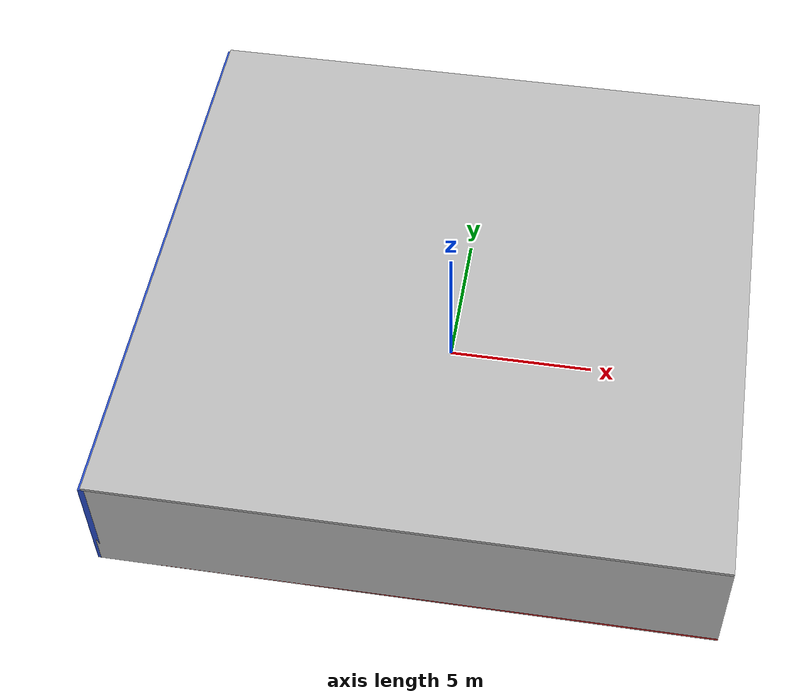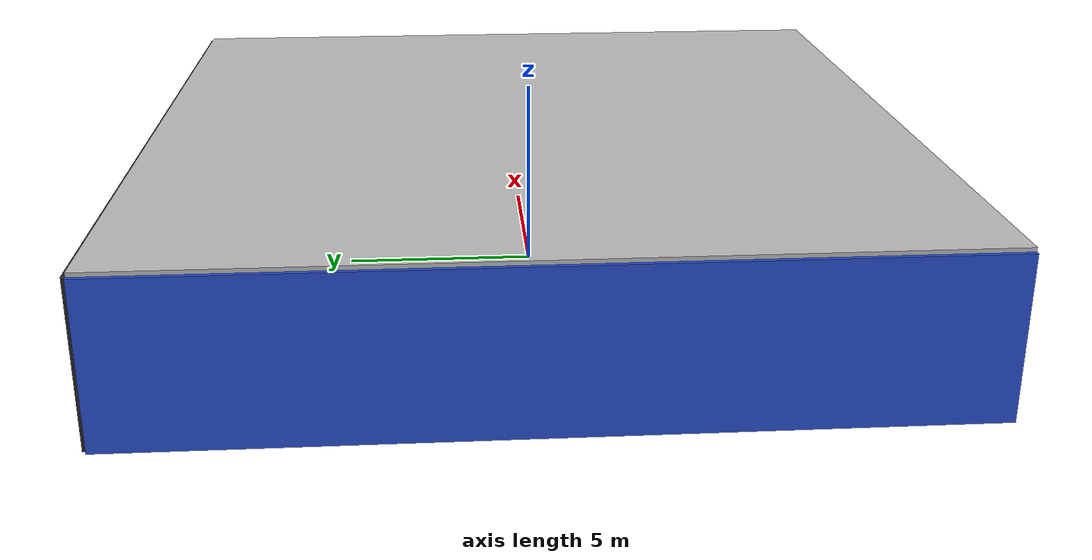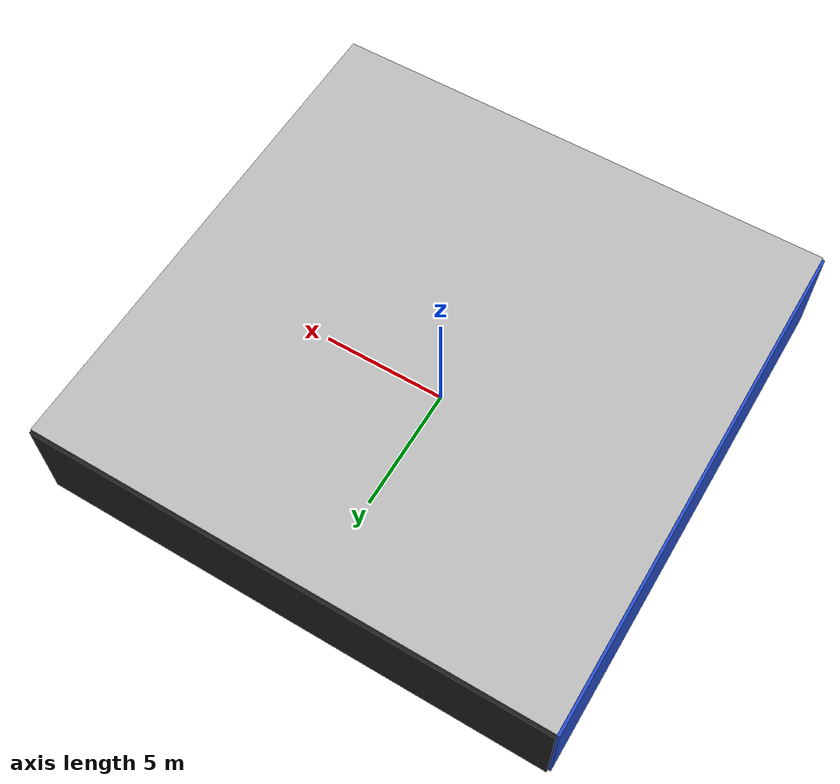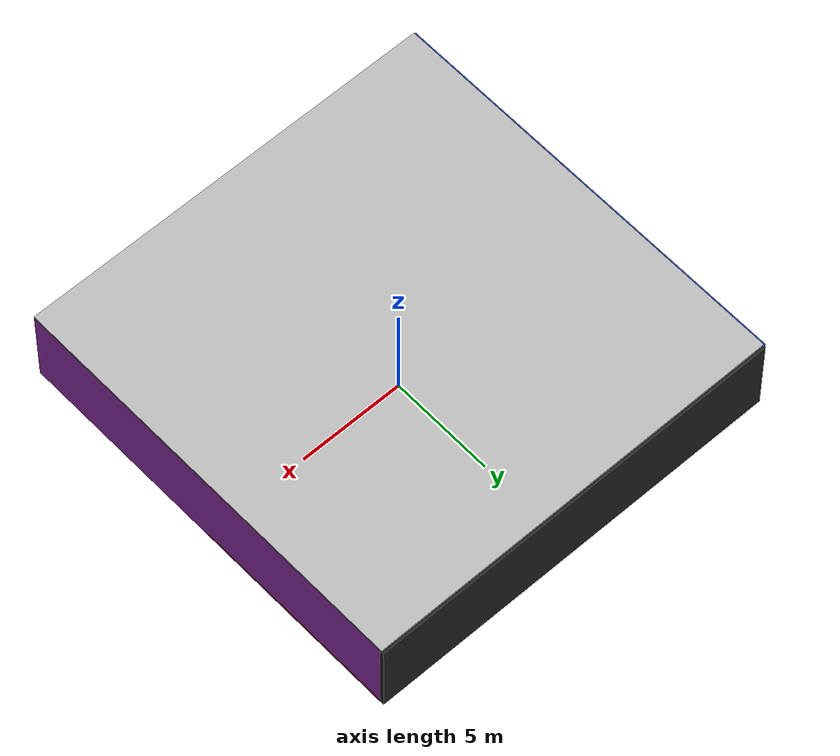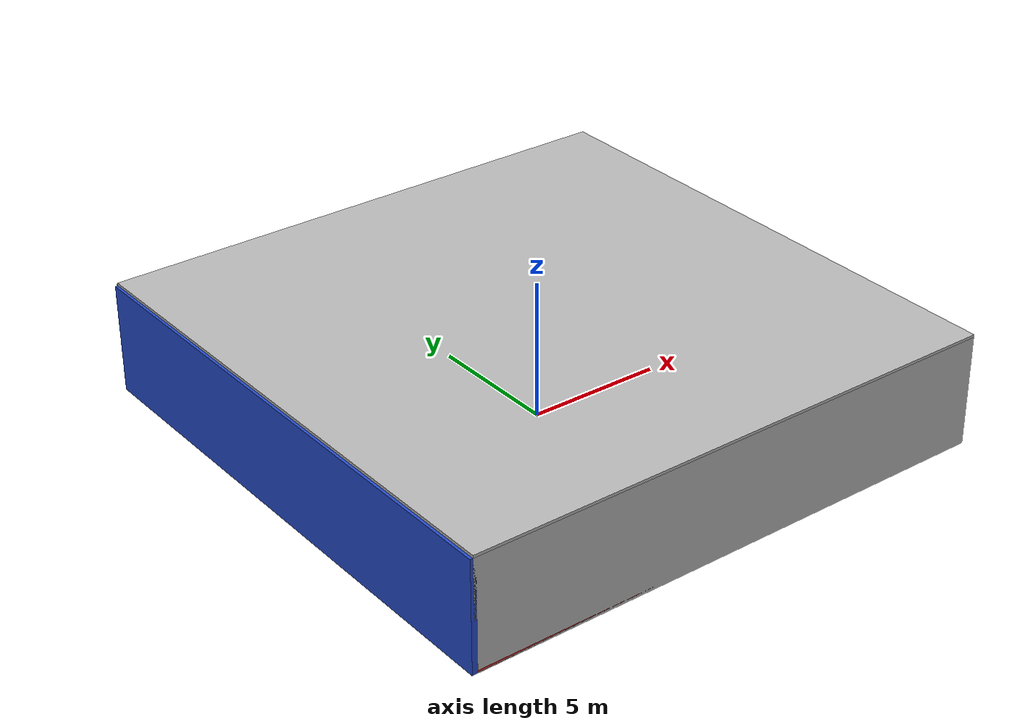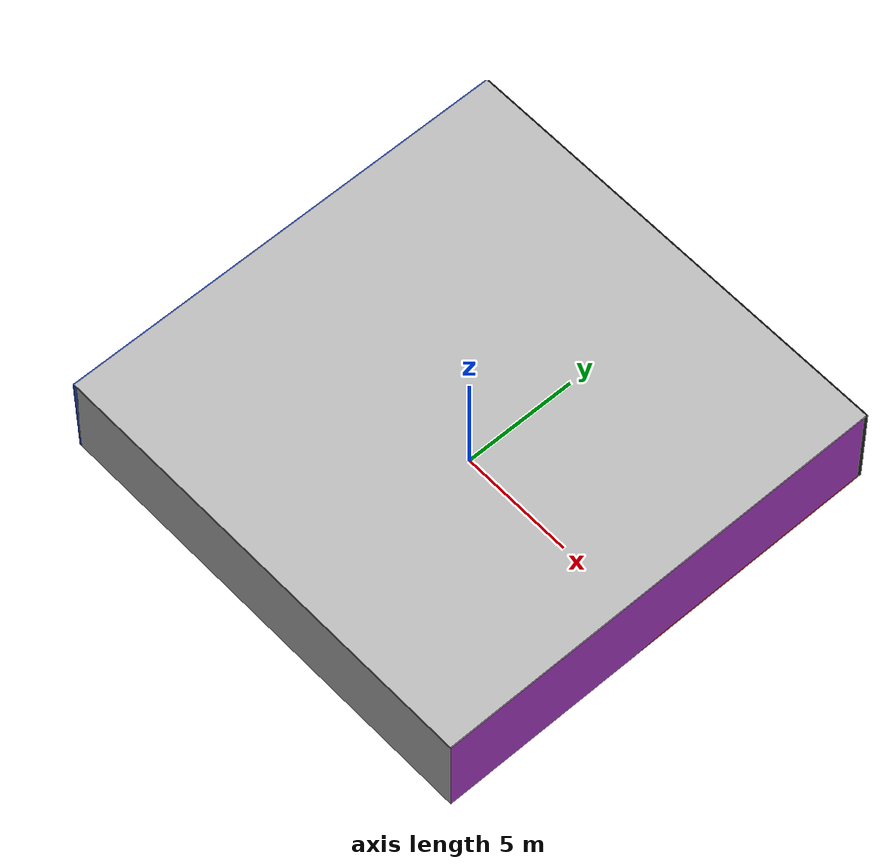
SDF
<sdf version="1.4">
 <world name="default">
  <physics type="ode">
   <max_step_size>0.001</max_step_size>
   <real_time_factor>1</real_time_factor>
   <real_time_update_rate>1000</real_time_update_rate>
   <gravity>0 0 -9.8</gravity>
  </physics>
  <scene><ambient>0.4 0.4 0.4 1</ambient><background>0.7 0.7 0.7 1</background><shadows>1</shadows></scene>
  <model name="Surrounding">
   <static>1</static>
   <link name="Ceiling">
    <collision name="Ceiling_Collision"><geometry><box><size>20 20 0.1</size></box></geometry></collision>
    <visual name="Ceiling_Visual">
     <geometry><box><size>20 20 0.1</size></box></geometry>
     <material>
      <script><uri>file://media/materials/scripts/gazebo.material</uri><name>Gazebo/LightOn</name></script>
     </material>
    </visual>
    <pose>0 0 4.05 0 0 0</pose>
   </link>
   <link name="Wall_South">
    <collision name="Wall_South_Collision">
     <geometry><box><size>20 0 4</size></box></geometry>
     <pose>0 0 2 0 -0 0</pose>
    </collision>
    <visual name="Wall_South_Visual">
     <pose>0 0 2 0 -0 0</pose>
     <geometry><box><size>20 0 4</size></box></geometry>
     <material>
      <script><uri>file://media/materials/scripts/gazebo.material</uri><name>Gazebo/Pioneer2Body</name></script>
     </material>
    </visual>
    <velocity_decay><linear>0</linear><angular>0</angular></velocity_decay>
    <pose>0 -10 0 0 -0 0</pose>
   </link>
   <link name="Wall_East">
    <collision name="Wall_21_Collision">
     <geometry><box><size>20 0 4</size></box></geometry>
     <pose>0 0 2 0 -0 0</pose>
    </collision>
    <visual name="Wall_21_Visual">
     <pose>0 0 2 0 -0 0</pose>
     <geometry><box><size>20 0 4</size></box></geometry>
     <material>
      <script><uri>file://media/materials/scripts/gazebo.material</uri><name>Gazebo/PurpleGlow</name></script>
     </material>
    </visual>
    <velocity_decay><linear>0</linear><angular>0</angular></velocity_decay>
    <pose>10 0 0 0 -0 1.5708</pose>
   </link>
   <link name="Wall_North">
    <collision name="Wall_22_Collision">
     <geometry><box><size>20 0.2 4</size></box></geometry>
     <pose>0 0 2 0 -0 0</pose>
    </collision>
    <visual name="Wall_22_Visual">
     <pose>0 0 2 0 -0 0</pose>
     <geometry><box><size>20 0.2 4</size></box></geometry>
     <material>
      <script><uri>file://media/materials/scripts/gazebo.material</uri><name>Gazebo/Black</name></script>
     </material>
    </visual>
    <velocity_decay><linear>0</linear><angular>0</angular></velocity_decay>
    <pose>0 10 0 0 -0 0</pose>
   </link>
   <link name="Wall_West">
    <collision name="Wall_23_Collision">
     <geometry><box><size>20 0.2 4</size></box></geometry>
     <pose>0 0 2 0 -0 0</pose>
    </collision>
    <visual name="Wall_23_Visual">
     <pose>0 0 2 0 -0 0</pose>
     <geometry><box><size>20 0.2 4</size></box></geometry>
     <material>
      <script><uri>file://media/materials/scripts/gazebo.material</uri><name>Gazebo/Blue</name></script>
     </material>
    </visual>
    <velocity_decay><linear>0</linear><angular>0</angular></velocity_decay>
    <pose>-10 0 0 0 0 -1.5708</pose>
   </link>
   <link name="Ground_link">
    <collision name="collision">
     <pose>0 0 .05 0 -0 0</pose>
     <geometry><box><size>20 20 0.1</size></box></geometry>
    </collision>
    <visual name="visual">
     <pose>0 0 .05 0 -0 0</pose>
     <geometry><box><size>20 20 0.1</size></box></geometry>
     <material>
      <script><uri>file://media/materials/scripts/gazebo.material</uri><name>Gazebo/RedGlow</name></script>
     </material>
    </visual>
   </link>
   <static>1</static>
  </model>
  <spherical_coordinates>
   <surface_model>EARTH_WGS84</surface_model>
   <latitude_deg>0</latitude_deg>
   <longitude_deg>0</longitude_deg>
   <elevation>0</elevation>
   <heading_deg>0</heading_deg>
  </spherical_coordinates>
  <light name="lightball_0" type="diffuse">
   <diffuse>0.8 0.8 0.8 1</diffuse>
   <specular>0.2 0.2 0.2 1</specular>
   <attenuation>
    <range>100</range>
    <constant>0.7</constant>
    <linear>0.01</linear>
    <quadratic>0.001</quadratic>
   </attenuation>
   <direction>-0.5 0.1 -0.9</direction>
   <pose>8.29463749099 6.13521886899 1.12566872557 0 0 0</pose>
  </light>
  <light name="lightball_1" type="diffuse">
   <diffuse>0.8 0.8 0.8 1</diffuse>
   <specular>0.2 0.2 0.2 1</specular>
   <attenuation>
    <range>100</range>
    <constant>0.7</constant>
    <linear>0.01</linear>
    <quadratic>0.001</quadratic>
   </attenuation>
   <direction>-0.5 0.1 -0.9</direction>
   <pose>4.26674885837 -6.95387555266 3.50350697769 0 0 0</pose>
  </light>
  <include>
   <uri>model://construction_cone</uri>
   <pose>-7.85770714143 -5.15925026532 0 0 0 2.83377660096</pose>
  </include>
  <include>
   <uri>model://textured_shapes</uri>
   <pose>-4.42546886705 -3.69070290399 0 0 0 1.68502442277</pose>
  </include>
  <include>
   <uri>model://robocup_3Dsim_goal</uri>
   <pose>-3.53573764331 1.25334532837 0 0 0 1.39272621776</pose>
  </include>
  <include><uri>model://cabinet</uri><pose>-1.18752584589 3.88490880132 0 0 0 2.01305832041</pose></include>
  <include><uri>model://table</uri><pose>1.89655676159 -6.7700567437 0 0 0 1.76685961067</pose></include>
  <include>
   <uri>model://textured_shapes</uri>
   <pose>6.6204807351 -6.67081101569 0 0 0 1.35088742888</pose>
  </include>
  <include><uri>model://cabinet</uri><pose>7.18020819379 -0.739092919241 0 0 0 1.0293071435</pose></include>
  <include><uri>model://cabinet</uri><pose>6.65480021325 1.46061448769 0 0 0 0.113662099399</pose></include>
 </world>
</sdf>

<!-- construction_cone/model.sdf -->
<sdf version="1.5">
  <model name="Construction Cone">
    <link name="link">
      <collision name="collision">
        <geometry>
          <mesh>
            <scale>10 10 10</scale>
            <uri>file://isr-testbed/construction_cone/meshes/construction_cone.dae</uri>
          </mesh>
        </geometry>
      </collision>
      <visual name="visual">
        <geometry>
          <mesh>
            <scale>10 10 10</scale>
            <uri>file://isr-testbed/construction_cone/meshes/construction_cone.dae</uri>
          </mesh>
        </geometry>
      </visual>
    </link>
  </model>
</sdf>

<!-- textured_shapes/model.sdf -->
<sdf version="1.6">
  <model name="textured_shapes">
    <pose>0 0 0.5 0 0 0</pose>
    <link name="box">
      <pose>0 -1.5 0 0 0 0</pose>
      <collision name="collision">
        <geometry>
          <box>
            <size>1 1 1</size>
          </box>
        </geometry>
      </collision>
      <visual name="visual">
        <geometry>
          <box>
            <size>1 1 1</size>
          </box>
        </geometry>
        <material>
          <script>
            <uri>model://../model_source/models/textured_shapes/materials/scripts</uri>
            <uri>model://../model_source/models/textured_shapes/materials/textures</uri>
            <name>TexturedShape/Squares</name>
          </script>
        </material>
      </visual>
    </link>
    <link name="sphere">
      <collision name="collision">
        <geometry>
          <sphere>
            <radius>0.5</radius>
          </sphere>
        </geometry>
      </collision>
      <visual name="visual">
        <geometry>
          <sphere>
            <radius>0.5</radius>
          </sphere>
        </geometry>
        <material>
          <script>
            <uri>model://../model_source/models/textured_shapes/materials/scripts</uri>
            <uri>model://../model_source/models/textured_shapes/materials/textures</uri>
            <name>TexturedShape/Squares</name>
          </script>
        </material>
      </visual>
    </link>
    <link name="cylinder">
      <pose>0 1.5 0 0 0 0</pose>
      <collision name="collision">
        <geometry>
          <cylinder>
            <radius>0.5</radius>
            <length>1</length>
          </cylinder>
        </geometry>
      </collision>
      <visual name="visual">
        <geometry>
          <cylinder>
            <radius>0.5</radius>
            <length>1</length>
          </cylinder>
        </geometry>
        <material>
          <script>
            <uri>model://../model_source/models/textured_shapes/materials/scripts</uri>
            <uri>model://../model_source/models/textured_shapes/materials/textures</uri>
            <name>TexturedShape/Squares</name>
          </script>
        </material>
      </visual>
    </link>
  </model>
</sdf>

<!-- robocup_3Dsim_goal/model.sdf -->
<sdf version="1.5">
  <model name="robocup_3d_goal">
    <static>true</static>
    <link name="left_post">
      <pose>0 1.05 0.45 0 0 0</pose>
      <collision name="collision">
        <geometry>
          <cylinder>
            <radius>0.05</radius>
            <length>0.9</length>
          </cylinder>
        </geometry>
      </collision>
      <visual name="visual">
        <geometry>
          <cylinder>
            <radius>0.05</radius>
            <length>0.9</length>
          </cylinder>
        </geometry>
        <material>
          <script>
            <uri>file://media/materials/scripts/gazebo.material</uri>
            <name>Gazebo/ZincYellow</name>
          </script>
        </material>
      </visual>
    </link>
    <link name="left_support_horiz_lower">
      <pose>0.30 1.05 0.01 0 0 0</pose>
      <collision name="collision">
        <geometry>
          <box>
            <size>0.50 0.02 0.02</size>
          </box>
        </geometry>
      </collision>
      <visual name="visual">
        <geometry>
          <box>
            <size>0.50 0.02 0.02</size>
          </box>
        </geometry>
        <material>
          <script>
            <uri>file://media/materials/scripts/gazebo.material</uri>
            <name>Gazebo/White</name>
          </script>
        </material>
      </visual>
    </link>
    <link name="left_support_horiz_upper">
      <pose>0.30 1.05 0.79 0 0 0</pose>
      <collision name="collision">
        <geometry>
          <box>
            <size>0.50 0.02 0.02</size>
          </box>
        </geometry>
      </collision>
      <visual name="visual">
        <geometry>
          <box>
            <size>0.50 0.02 0.02</size>
          </box>
        </geometry>
        <material>
          <script>
            <uri>file://media/materials/scripts/gazebo.material</uri>
            <name>Gazebo/White</name>
          </script>
        </material>
      </visual>
    </link>
    <link name="left_support_vertical">
      <pose>0.56 1.05 0.4 0 1.5708 0</pose>
      <collision name="collision">
        <geometry>
          <box>
            <size>0.80 0.02 0.02</size>
          </box>
        </geometry>
      </collision>
      <visual name="visual">
        <geometry>
          <box>
            <size>0.80 0.02 0.02</size>
          </box>
        </geometry>
        <material>
          <script>
            <uri>file://media/materials/scripts/gazebo.material</uri>
            <name>Gazebo/White</name>
          </script>
        </material>
      </visual>
    </link>
    <link name="right_support_horiz_lower">
      <pose>0.30 -1.05 0.01 0 0 0</pose>
      <collision name="collision">
        <geometry>
          <box>
            <size>0.50 0.02 0.02</size>
          </box>
        </geometry>
      </collision>
      <visual name="visual">
        <geometry>
          <box>
            <size>0.50 0.02 0.02</size>
          </box>
        </geometry>
        <material>
          <script>
            <uri>file://media/materials/scripts/gazebo.material</uri>
            <name>Gazebo/White</name>
          </script>
        </material>
      </visual>
    </link>
    <link name="right_support_horiz_upper">
      <pose>0.30 -1.05 0.79 0 0 0</pose>
      <collision name="collision">
        <geometry>
          <box>
            <size>0.50 0.02 0.02</size>
          </box>
        </geometry>
      </collision>
      <visual name="visual">
        <geometry>
          <box>
            <size>0.50 0.02 0.02</size>
          </box>
        </geometry>
        <material>
          <script>
            <uri>file://media/materials/scripts/gazebo.material</uri>
            <name>Gazebo/White</name>
          </script>
        </material>
      </visual>
    </link>
    <link name="right_support_vertical">
      <pose>0.56 -1.05 0.4 0 1.5708 0</pose>
      <collision name="collision">
        <geometry>
          <box>
            <size>0.80 0.02 0.02</size>
          </box>
        </geometry>
      </collision>
      <visual name="visual">
        <geometry>
          <box>
            <size>0.80 0.02 0.02</size>
          </box>
        </geometry>
        <material>
          <script>
            <uri>file://media/materials/scripts/gazebo.material</uri>
            <name>Gazebo/White</name>
          </script>
        </material>
      </visual>
    </link>
    <link name="center_support_horiz_lower">
      <pose>0.56 0 0.01 0 1.5708 0</pose>
      <collision name="collision">
        <geometry>
          <box>
            <size>0.02 2.08 0.02</size>
          </box>
        </geometry>
      </collision>
      <visual name="visual">
        <geometry>
          <box>
            <size>0.02 2.08 0.02</size>
          </box>
        </geometry>
        <material>
          <script>
            <uri>file://media/materials/scripts/gazebo.material</uri>
            <name>Gazebo/White</name>
          </script>
        </material>
      </visual>
    </link>
    <link name="center_support_horiz_upper">
      <pose>0.56 0 0.79 0 1.5708 0</pose>
      <collision name="collision">
        <geometry>
          <box>
            <size>0.02 2.08 0.02</size>
          </box>
        </geometry>
      </collision>
      <visual name="visual">
        <geometry>
          <box>
            <size>0.02 2.08 0.02</size>
          </box>
        </geometry>
        <material>
          <script>
            <uri>file://media/materials/scripts/gazebo.material</uri>
            <name>Gazebo/White</name>
          </script>
        </material>
      </visual>
    </link>
    <link name="right_post">
      <pose>0 -1.05 0.45 0 0 0</pose>
      <collision name="collision">
        <geometry>
          <cylinder>
            <radius>0.05</radius>
            <length>0.9</length>
          </cylinder>
        </geometry>
      </collision>
      <visual name="visual">
        <geometry>
          <cylinder>
            <radius>0.05</radius>
            <length>0.9</length>
          </cylinder>
        </geometry>
        <material>
          <script>
            <uri>file://media/materials/scripts/gazebo.material</uri>
            <name>Gazebo/ZincYellow</name>
          </script>
        </material>
      </visual>
    </link>
    <link name="crossbar">
      <pose>0 0 0.85 1.57 1.57 0</pose>
      <collision name="collision">
        <geometry>
          <cylinder>
            <radius>0.05</radius>
            <length>2.0</length>
          </cylinder>
        </geometry>
      </collision>
      <visual name="visual">
        <geometry>
          <cylinder>
            <radius>0.05</radius>
            <length>2.0</length>
          </cylinder>
        </geometry>
        <material>
          <script>
            <uri>file://media/materials/scripts/gazebo.material</uri>
            <name>Gazebo/ZincYellow</name>
          </script>
        </material>
      </visual>
    </link>
    <link name="center_net">
      <pose>0.56 0 0.40 0 0 0</pose>
      <collision name="collision">
        <geometry>
          <box>
            <size>0.01 2.1 0.80</size>
          </box>
        </geometry>
      </collision>
      <visual name="visual">
        <geometry>
          <box>
            <size>0.01 2.1 0.80</size>
          </box>
        </geometry>
        <material>
          <script>
            <uri>model://../model_source/models/robocup09_spl_field/materials/scripts/</uri>
            <uri>model://../model_source/models/robocup09_spl_field/materials/textures/</uri>
            <name>RoboCup/Net</name>
          </script>
        </material>
      </visual>
    </link>
    <link name="left_net">
      <pose>0.30 1.05 0.40 0 0 0</pose>
      <collision name="collision">
        <geometry>
          <box>
            <size>0.50 0.01 0.76</size>
          </box>
        </geometry>
      </collision>
      <visual name="visual">
        <geometry>
          <box>
            <size>0.50 0.01 0.76</size>
          </box>
        </geometry>
        <material>
          <script>
            <uri>model://../model_source/models/robocup09_spl_field/materials/scripts/</uri>
            <uri>model://../model_source/models/robocup09_spl_field/materials/textures/</uri>
            <name>RoboCup/Net</name>
          </script>
        </material>
      </visual>
    </link>
    <link name="right_net">
      <pose>0.30 -1.05 0.40 0 0 0</pose>
      <collision name="collision">
        <geometry>
          <box>
            <size>0.50 0.01 0.76</size>
          </box>
        </geometry>
      </collision>
      <visual name="visual">
        <geometry>
          <box>
            <size>0.50 0.01 0.76</size>
          </box>
        </geometry>
        <material>
          <script>
            <uri>model://../model_source/models/robocup09_spl_field/materials/scripts/</uri>
            <uri>model://../model_source/models/robocup09_spl_field/materials/textures/</uri>
            <name>RoboCup/Net</name>
          </script>
        </material>
      </visual>
    </link>
  </model>
</sdf>

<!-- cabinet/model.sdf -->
<sdf version="1.5">
  <model name="cabinet">
    <static>true</static>
    <link name="cabinet_bottom_plate">
      <inertial>
        <pose>0 0 -1 0 0 0</pose>
        <inertia>
          <ixx>2.050000</ixx>
          <ixy>0</ixy>
          <ixz>0</ixz>
          <iyy>2.050000</iyy>
          <iyz>0</iyz>
          <izz>2.050000</izz>
        </inertia>
        <mass>25.000000</mass>
      </inertial>
      <collision name="cabinet_bottom_plate_geom">
        <pose>0 0 0.010000 0 0 0</pose>
        <geometry>
          <box>
            <size>0.450000 0.450000 0.020000</size>
          </box>
        </geometry>
      </collision>
      <visual name="cabinet_bottom_plate_geom_visual">
        <pose>0 0 0.010000 0 0 0</pose>
        <geometry>
          <box>
            <size>0.450000 0.450000 0.020000</size>
          </box>
        </geometry>
        <material>
          <script>
            <uri>model://media/materials/scripts/gazebo.material</uri>
            <name>Gazebo/Wood</name>
          </script>
        </material>
      </visual>
      <collision name="cabinet_bottom_plate_geom_cabinet_back_plate">
        <pose>0.235000 0 0.510000 0 0 0</pose>
        <geometry>
          <box>
            <size>0.020000 0.450000 1.020000</size>
          </box>
        </geometry>
      </collision>
      <visual name="cabinet_bottom_plate_geom_cabinet_back_plate_visual">
        <pose>0.235000 0 0.510000 0 0 0</pose>
        <geometry>
          <box>
            <size>0.020000 0.450000 1.020000</size>
          </box>
        </geometry>
        <material>
          <script>
            <uri>model://media/materials/scripts/gazebo.material</uri>
            <name>Gazebo/Wood</name>
          </script>
        </material>
      </visual>
      <collision name="cabinet_bottom_plate_geom_cabinet_left_plate">
        <pose>0 0.235000 0.510000 0 0 0</pose>
        <geometry>
          <box>
            <size>0.450000 0.020000 1.020000</size>
          </box>
        </geometry>
      </collision>
      <visual name="cabinet_bottom_plate_geom_cabinet_left_plate_visual">
        <pose>0 0.235000 0.510000 0 0 0</pose>
        <geometry>
          <box>
            <size>0.450000 0.020000 1.020000</size>
          </box>
        </geometry>
        <material>
          <script>
            <uri>model://media/materials/scripts/gazebo.material</uri>
            <name>Gazebo/Wood</name>
          </script>
        </material>
      </visual>
      <collision name="cabinet_bottom_plate_geom_cabinet_middle_plate">
        <pose>0 0 0.510000 0 0 0</pose>
        <geometry>
          <box>
            <size>0.450000 0.450000 0.020000</size>
          </box>
        </geometry>
      </collision>
      <visual name="cabinet_bottom_plate_geom_cabinet_middle_plate_visual">
        <pose>0 0 0.510000 0 0 0</pose>
        <geometry>
          <box>
            <size>0.450000 0.450000 0.020000</size>
          </box>
        </geometry>
        <material>
          <script>
            <uri>model://media/materials/scripts/gazebo.material</uri>
            <name>Gazebo/Wood</name>
          </script>
        </material>
      </visual>
      <collision name="cabinet_bottom_plate_geom_cabinet_right_plate">
        <pose>0 -0.235000 0.510000 0 0 0</pose>
        <geometry>
          <box>
            <size>0.450000 0.020000 1.020000</size>
          </box>
        </geometry>
      </collision>
      <visual name="cabinet_bottom_plate_geom_cabinet_right_plate_visual">
        <pose>0 -0.235000 0.510000 0 0 0</pose>
        <geometry>
          <box>
            <size>0.450000 0.020000 1.020000</size>
          </box>
        </geometry>
        <material>
          <script>
            <uri>model://media/materials/scripts/gazebo.material</uri>
            <name>Gazebo/Wood</name>
          </script>
        </material>
      </visual>
      <collision name="cabinet_bottom_plate_geom_cabinet_top_plate">
        <pose>0 0 1.010000 0 0 0</pose>
        <geometry>
          <box>
            <size>0.450000 0.450000 0.020000</size>
          </box>
        </geometry>
      </collision>
      <visual name="cabinet_bottom_plate_geom_cabinet_top_plate_visual">
        <pose>0 0 1.010000 0 0 0</pose>
        <geometry>
          <box>
            <size>0.450000 0.450000 0.020000</size>
          </box>
        </geometry>
        <material>
          <script>
            <uri>model://media/materials/scripts/gazebo.material</uri>
            <name>Gazebo/Wood</name>
          </script>
        </material>
      </visual>
    </link>
  </model>
</sdf>

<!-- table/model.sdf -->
<sdf version="1.5">
  <model name="table">
    <static>true</static>
    <link name="link">
      <collision name="surface">
        <pose>0 0 1.0 0 0 0</pose>
        <geometry>
          <box>
            <size>1.5 0.8 0.03</size>
          </box>
        </geometry>
        <surface>
          <friction>
            <ode>
              <mu>0.6</mu>
              <mu2>0.6</mu2>
            </ode>
          </friction>
        </surface>
      </collision>
      <visual name="visual1">
        <pose>0 0 1.0 0 0 0</pose>
        <geometry>
          <box>
            <size>1.5 0.8 0.03</size>
          </box>
        </geometry>
        <material>
          <script>
            <uri>model://media/materials/scripts/gazebo.material</uri>
            <name>Gazebo/Wood</name>
          </script>
        </material>
      </visual>
      <collision name="front_left_leg">
        <pose>0.68 0.38 0.5 0 0 0</pose>
        <geometry>
          <cylinder>
            <radius>0.02</radius>
            <length>1.0</length>
          </cylinder>
        </geometry>
      </collision>
      <visual name="front_left_leg">
        <pose>0.68 0.38 0.5 0 0 0</pose>
        <geometry>
          <cylinder>
            <radius>0.02</radius>
            <length>1.0</length>
          </cylinder>
        </geometry>
        <material>
          <script>
            <uri>model://media/materials/scripts/gazebo.material</uri>
            <name>Gazebo/Grey</name>
          </script>
        </material>
      </visual>
      <collision name="front_right_leg">
        <pose>0.68 -0.38 0.5 0 0 0</pose>
        <geometry>
          <cylinder>
            <radius>0.02</radius>
            <length>1.0</length>
          </cylinder>
        </geometry>
      </collision>
      <visual name="front_right_leg">
        <pose>0.68 -0.38 0.5 0 0 0</pose>
        <geometry>
          <cylinder>
            <radius>0.02</radius>
            <length>1.0</length>
          </cylinder>
        </geometry>
        <material>
          <script>
            <uri>model://media/materials/scripts/gazebo.material</uri>
            <name>Gazebo/Grey</name>
          </script>
        </material>
      </visual>
      <collision name="back_right_leg">
        <pose>-0.68 -0.38 0.5 0 0 0</pose>
        <geometry>
          <cylinder>
            <radius>0.02</radius>
            <length>1.0</length>
          </cylinder>
        </geometry>
      </collision>
      <visual name="back_right_leg">
        <pose>-0.68 -0.38 0.5 0 0 0</pose>
        <geometry>
          <cylinder>
            <radius>0.02</radius>
            <length>1.0</length>
          </cylinder>
        </geometry>
        <material>
          <script>
            <uri>model://media/materials/scripts/gazebo.material</uri>
            <name>Gazebo/Grey</name>
          </script>
        </material>
      </visual>
      <collision name="back_left_leg">
        <pose>-0.68 0.38 0.5 0 0 0</pose>
        <geometry>
          <cylinder>
            <radius>0.02</radius>
            <length>1.0</length>
          </cylinder>
        </geometry>
      </collision>
      <visual name="back_left_leg">
        <pose>-0.68 0.38 0.5 0 0 0</pose>
        <geometry>
          <cylinder>
            <radius>0.02</radius>
            <length>1.0</length>
          </cylinder>
        </geometry>
        <material>
          <script>
            <uri>model://media/materials/scripts/gazebo.material</uri>
            <name>Gazebo/Grey</name>
          </script>
        </material>
      </visual>
    </link>
  </model>
</sdf>
